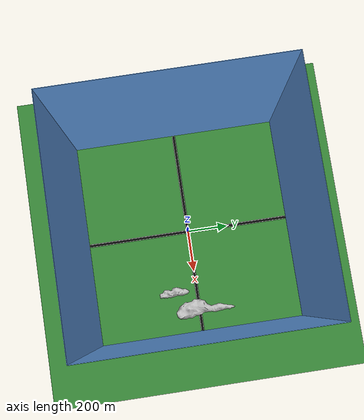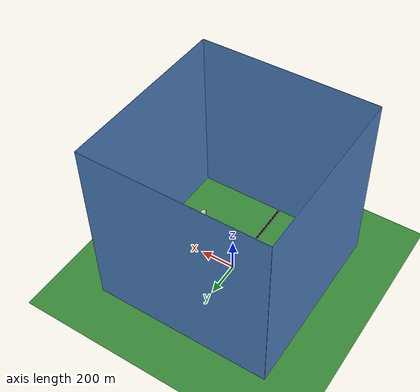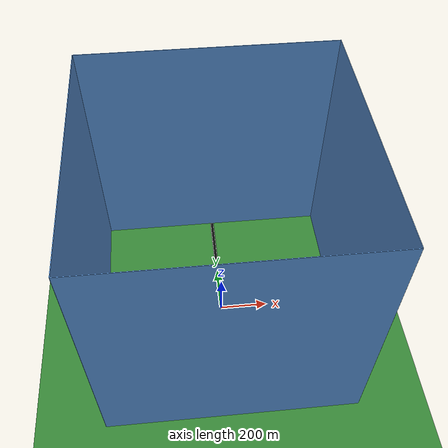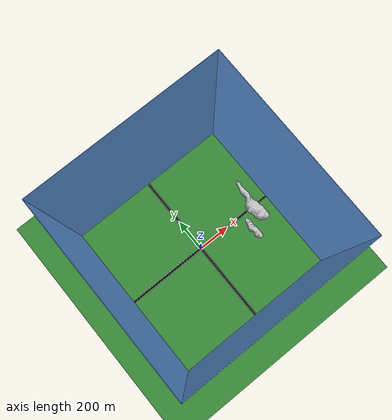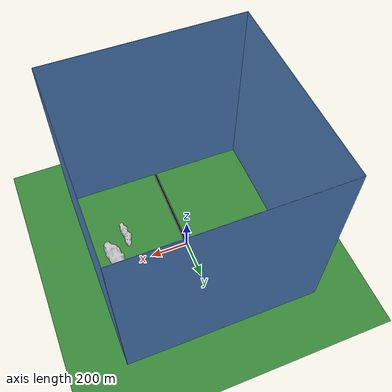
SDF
<sdf version="1.9">
 <world name="road_junction">
  <plugin filename="gz-sim-scene-broadcaster-system" name="gz::sim::systems::SceneBroadcaster"/>
  <plugin filename="gz-sim-physics-system" name="gz::sim::systems::Physics"/>
  <plugin filename="gz-sim-user-commands-system" name="gz::sim::systems::UserCommands"/>
  <gravity>0 0 -9.8</gravity>
  <light type="directional" name="sun">
   <cast_shadows>false</cast_shadows>
   <pose>0 0 10 0 0 0</pose>
   <diffuse>0.8 0.8 0.8 1</diffuse>
   <specular>0.2 0.2 0.2 1</specular>
   <attenuation>
    <range>1000</range>
    <constant>0.9</constant>
    <linear>0.01</linear>
    <quadratic>0.001</quadratic>
   </attenuation>
   <direction>-0.5 0.1 -0.9</direction>
  </light>
  <model name="ground_plane">
   <static>true</static>
   <link name="ground-link">
    <collision name="collision">
     <geometry><plane><normal>0 0 1</normal></plane></geometry>
     <surface><friction><ode><mu>1.0</mu><mu2>1.0</mu2></ode></friction></surface>
    </collision>
    <visual name="visual">
     <geometry><plane><normal>0 0 1</normal><size>1000 1000</size></plane></geometry>
     <material>
      <ambient>0.1 0.3 0.1 1</ambient>
      <diffuse>0.2 0.5 0.2 1</diffuse>
      <specular>0.1 0.2 0.1 1</specular>
      <emissive>0 0 0 1</emissive>
     </material>
    </visual>
   </link>
  </model>
  <model name="sky">
   <static>true</static>
   <link name="sky 1">
    <pose>0 500 500 0 0 0</pose>
    <collision name="collision"><geometry><box><size>1000 2 1000</size></box></geometry></collision>
    <visual name="visual">
     <geometry><box><size>1000 2 1000</size></box></geometry>
     <material>
      <ambient>0.4 0.65 0.95 1.0</ambient>
      <diffuse>0.4 0.65 0.95 1.0</diffuse>
      <specular>0 0 0 1</specular>
      <emissive>0.3 0.55 0.85 1.0</emissive>
      <lighting>false</lighting>
     </material>
    </visual>
   </link>
   <link name="sky 2">
    <pose>0 -500 500 0 0 0</pose>
    <collision name="collision"><geometry><box><size>1000 2 1000</size></box></geometry></collision>
    <visual name="visual">
     <geometry><box><size>1000 2 1000</size></box></geometry>
     <material>
      <ambient>0.4 0.65 0.95 1.0</ambient>
      <diffuse>0.4 0.65 0.95 1.0</diffuse>
      <specular>0 0 0 1</specular>
      <emissive>0.3 0.55 0.85 1.0</emissive>
      <lighting>false</lighting>
     </material>
    </visual>
   </link>
   <link name="sky 3">
    <pose>500 0 500 0 0 0</pose>
    <collision name="collision"><geometry><box><size>2 1000 1000</size></box></geometry></collision>
    <visual name="visual">
     <geometry><box><size>2 1000 1000</size></box></geometry>
     <material>
      <ambient>0.4 0.65 0.95 1.0</ambient>
      <diffuse>0.4 0.65 0.95 1.0</diffuse>
      <specular>0 0 0 1</specular>
      <emissive>0.3 0.55 0.85 1.0</emissive>
      <lighting>false</lighting>
     </material>
    </visual>
   </link>
   <link name="sky 4">
    <pose>-500 0 500 0 0 0</pose>
    <collision name="collision"><geometry><box><size>2 1000 1000</size></box></geometry></collision>
    <visual name="visual">
     <geometry><box><size>2 1000 1000</size></box></geometry>
     <material>
      <ambient>0.4 0.65 0.95 1.0</ambient>
      <diffuse>0.4 0.65 0.95 1.0</diffuse>
      <specular>0 0 0 1</specular>
      <emissive>0.3 0.55 0.85 1.0</emissive>
      <lighting>false</lighting>
     </material>
    </visual>
   </link>
   <link name="cloud-1">
    <pose>150 -50 60 0 0 0</pose>
    <collision name="cloud"><pose>150 -50 50 0 0 0</pose><geometry><box>1 1 1</box></geometry></collision>
    <visual name="cloud-visual">
     <pose>150 -50 50 0 1.57 1.57</pose>
     <geometry><mesh><scale>20 20 20</scale><uri>model://sky/meshes/CloudMedium2.obj</uri></mesh></geometry>
    </visual>
   </link>
   <link name="cloud-2">
    <pose>200 10 40 0 0 0</pose>
    <collision name="cloud"><pose>200 10 40 0 0 0</pose><geometry><box>1 1 1</box></geometry></collision>
    <visual name="cloud-visual">
     <pose>200 10 40 0 1.57 1.57</pose>
     <geometry><mesh><scale>40 40 40</scale><uri>model://hatchback/meshes/CloudLong3.obj</uri></mesh></geometry>
    </visual>
   </link>
  </model>
  <model name="road">
   <static>true</static>
   <link name="road_link-y">
    <pose>0 0 0.01 0 0 0</pose>
    <collision name="collision"><geometry><box><size>1000 10 0.01</size></box></geometry></collision>
    <visual name="visual">
     <geometry><box><size>1000 10 0.01</size></box></geometry>
     <material>
      <ambient>0 0 0 1</ambient>
      <diffuse>0 0 0 1</diffuse>
      <specular>0.1 0.1 0.1 1</specular>
      <emissive>0 0 0 1</emissive>
     </material>
    </visual>
   </link>
   <link name="road_link-x">
    <pose>0 0 0.01 0 0 0</pose>
    <collision name="collision"><geometry><box><size>10 1000 0.01</size></box></geometry></collision>
    <visual name="visual">
     <geometry><box><size>10 1000 0.01</size></box></geometry>
     <material>
      <ambient>0 0 0 1</ambient>
      <diffuse>0 0 0 1</diffuse>
      <specular>0.1 0.1 0.1 1</specular>
      <emissive>0 0 0 1</emissive>
     </material>
    </visual>
   </link>
  </model>
  <model name="sidewalk">
   <static>true</static>
   <link name="sw_link-yl-1">
    <pose>250 6.5 0.01 0 0 0</pose>
    <collision name="collision"><geometry><box><size>490 3 0.05</size></box></geometry></collision>
    <visual name="visual">
     <geometry><box><size>490 3 0.05</size></box></geometry>
     <material>
      <script><uri>file://media/materials/scripts/gazebo.material</uri><name>Gazebo/Pedestrian</name></script>
     </material>
    </visual>
   </link>
   <link name="sw_link-yl-2">
    <pose>-250 6.5 0.01 0 0 0</pose>
    <collision name="collision"><geometry><box><size>490 3 0.05</size></box></geometry></collision>
    <visual name="visual">
     <geometry><box><size>490 3 0.05</size></box></geometry>
     <material>
      <script><uri>file://media/materials/scripts/gazebo.material</uri><name>Gazebo/Pedestrian</name></script>
     </material>
    </visual>
   </link>
   <link name="sw_link-yr-1">
    <pose>250 -6.5 0.01 0 0 0</pose>
    <collision name="collision"><geometry><box><size>490 3 0.05</size></box></geometry></collision>
    <visual name="visual">
     <geometry><box><size>490 3 0.05</size></box></geometry>
     <material>
      <script><uri>file://media/materials/scripts/gazebo.material</uri><name>Gazebo/Pedestrian</name></script>
     </material>
    </visual>
   </link>
   <link name="sw_link-yr-2">
    <pose>-250 -6.5 0.01 0 0 0</pose>
    <collision name="collision"><geometry><box><size>490 3 0.05</size></box></geometry></collision>
    <visual name="visual">
     <geometry><box><size>490 3 0.05</size></box></geometry>
     <material>
      <script><uri>file://media/materials/scripts/gazebo.material</uri><name>Gazebo/Pedestrian</name></script>
     </material>
    </visual>
   </link>
   <link name="sw_link-xr-1">
    <pose>6.5 250 0.01 0 0 0</pose>
    <collision name="collision"><geometry><box><size>3 490 0.05</size></box></geometry></collision>
    <visual name="visual">
     <geometry><box><size>3 490 0.05</size></box></geometry>
     <material>
      <script><uri>file://media/materials/scripts/gazebo.material</uri><name>Gazebo/Pedestrian</name></script>
     </material>
    </visual>
   </link>
   <link name="sw_link-xr-2">
    <pose>6.5 -250 0.01 0 0 0</pose>
    <collision name="collision"><geometry><box><size>3 490 0.05</size></box></geometry></collision>
    <visual name="visual">
     <geometry><box><size>3 490 0.05</size></box></geometry>
     <material>
      <script><uri>file://media/materials/scripts/gazebo.material</uri><name>Gazebo/Pedestrian</name></script>
     </material>
    </visual>
   </link>
   <link name="sw_link-xl-1">
    <pose>-6.5 250 0.01 0 0 0</pose>
    <collision name="collision"><geometry><box><size>3 490 0.05</size></box></geometry></collision>
    <visual name="visual">
     <geometry><box><size>3 490 0.05</size></box></geometry>
     <material>
      <script><uri>file://media/materials/scripts/gazebo.material</uri><name>Gazebo/Pedestrian</name></script>
     </material>
    </visual>
   </link>
   <link name="sw_link-xl-2">
    <pose>-6.5 -250 0.01 0 0 0</pose>
    <collision name="collision"><geometry><box><size>3 490 0.05</size></box></geometry></collision>
    <visual name="visual">
     <geometry><box><size>3 490 0.05</size></box></geometry>
     <material>
      <script><uri>file://media/materials/scripts/gazebo.material</uri><name>Gazebo/Pedestrian</name></script>
     </material>
    </visual>
   </link>
  </model>
  <model name="grid_junction">
   <static>true</static>
   <link name="grid-d1">
    <visual name="d1">
     <geometry><box><size>0.1 14.1 0.05</size></box></geometry>
     <material><diffuse>1 1 0 1</diffuse><specular>0.1 0.1 0 1</specular></material>
     <pose>0 0 0.05 0 0 0.78</pose>
    </visual>
   </link>
   <link name="grid-d2">
    <visual name="d2">
     <geometry><box><size>0.1 14.1 0.05</size></box></geometry>
     <material><diffuse>1 1 0 1</diffuse><specular>0.1 0.1 0 1</specular></material>
     <pose>0 0 0.05 0 0 -0.78</pose>
    </visual>
   </link>
   <link name="grid-d3">
    <visual name="d3">
     <geometry><box><size>0.1 7 0.05</size></box></geometry>
     <material><diffuse>1 1 0 1</diffuse><specular>0.1 0.1 0 1</specular></material>
     <pose>2.5 2.5 0.05 0 0 0.78</pose>
    </visual>
   </link>
   <link name="grid-d4">
    <visual name="d4">
     <geometry><box><size>0.1 7 0.05</size></box></geometry>
     <material><diffuse>1 1 0 1</diffuse><specular>0.1 0.1 0 1</specular></material>
     <pose>-2.5 -2.5 0.05 0 0 0.78</pose>
    </visual>
   </link>
   <link name="grid-d5">
    <visual name="d5">
     <geometry><box><size>0.1 7 0.05</size></box></geometry>
     <material><diffuse>1 1 0 1</diffuse><specular>0.1 0.1 0 1</specular></material>
     <pose>-2.5 2.5 0.05 0 0 -0.78</pose>
    </visual>
   </link>
   <link name="grid-d6">
    <visual name="d6">
     <geometry><box><size>0.1 7 0.05</size></box></geometry>
     <material><diffuse>1 1 0 1</diffuse><specular>0.1 0.1 0 1</specular></material>
     <pose>2.5 -2.5 0.05 0 0 -0.78</pose>
    </visual>
   </link>
  </model>
  <model name="stop_sign">
   <pose>6 -6 0 0 0 0</pose>
   <link name="pole">
    <pose>0 0 2.5 0 0 0</pose>
    <visual name="pole_visual">
     <geometry><cylinder><radius>0.1</radius><length>5.0</length></cylinder></geometry>
     <material><diffuse>0.3 0.3 0.3 1</diffuse><specular>0.1 0.1 0.1 1</specular></material>
    </visual>
    <collision name="collision">
     <geometry><cylinder><radius>0.1</radius><length>5.0</length></cylinder></geometry>
    </collision>
   </link>
   <link name="sign">
    <pose>0 0 5 1.57 0 1.57</pose>
    <visual name="disc_visual">
     <geometry><cylinder><radius>0.5</radius><length>0.02</length></cylinder></geometry>
     <material><diffuse>1 0 0 1</diffuse><specular>0.5 0.1 0.1 1</specular></material>
    </visual>
    <collision name="disc_collision">
     <geometry><cylinder><radius>0.5</radius><length>0.02</length></cylinder></geometry>
    </collision>
   </link>
   <joint name="pole_sign_joint" type="fixed">
    <parent>pole</parent>
    <child>sign</child>
    <pose>0 0 5.05 0 0 0</pose>
   </joint>
  </model>
  <plugin filename="gz-sim-python-system-loader-system" name="gz::sim::systems::PythonSystemLoader">
   <module_name>scripts.TrafficSystem</module_name>
   <world_name>road_junction</world_name>
   <sdf_path>model://hatchback/model.sdf</sdf_path>
  </plugin>
 </world>
</sdf>
